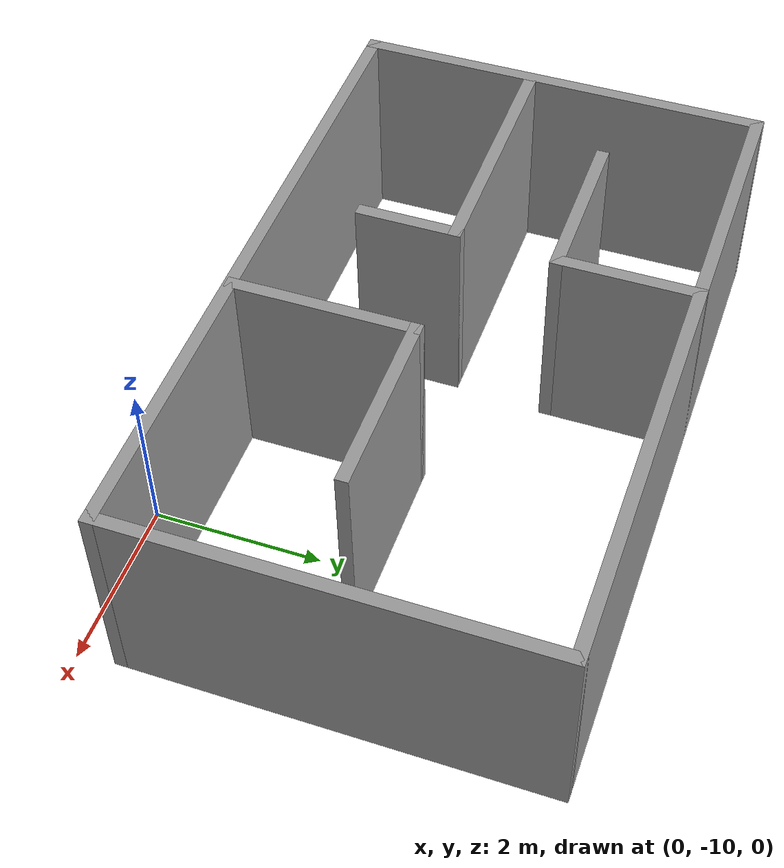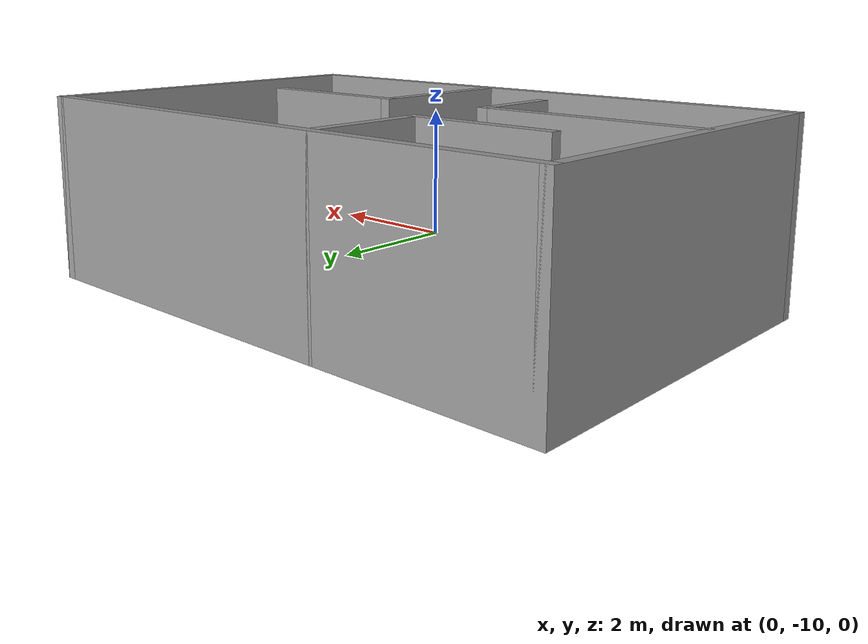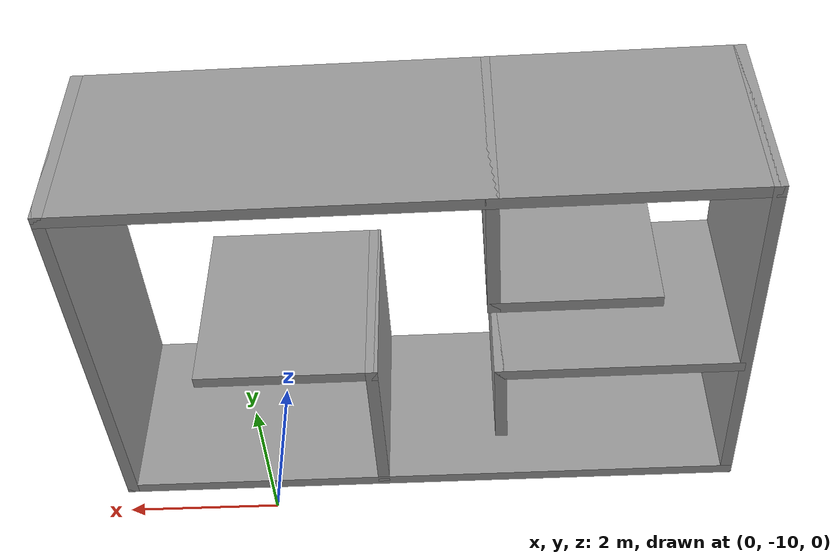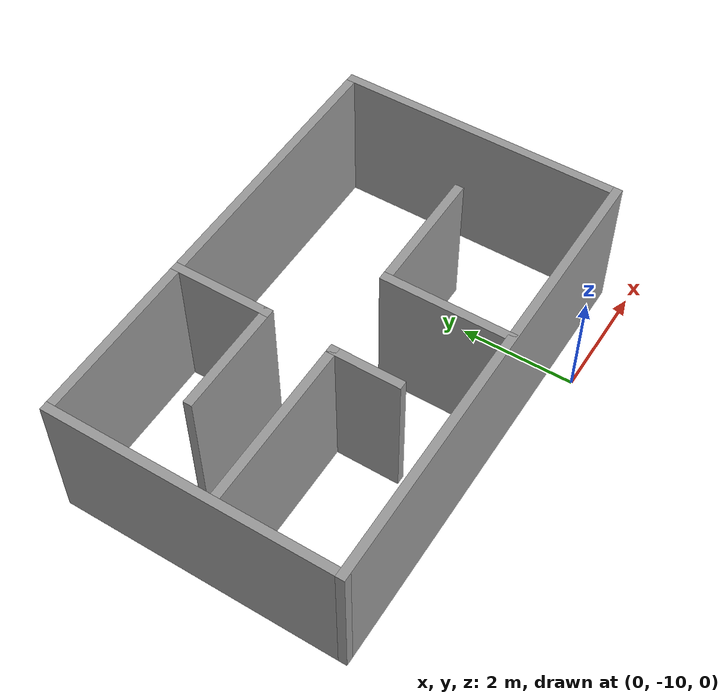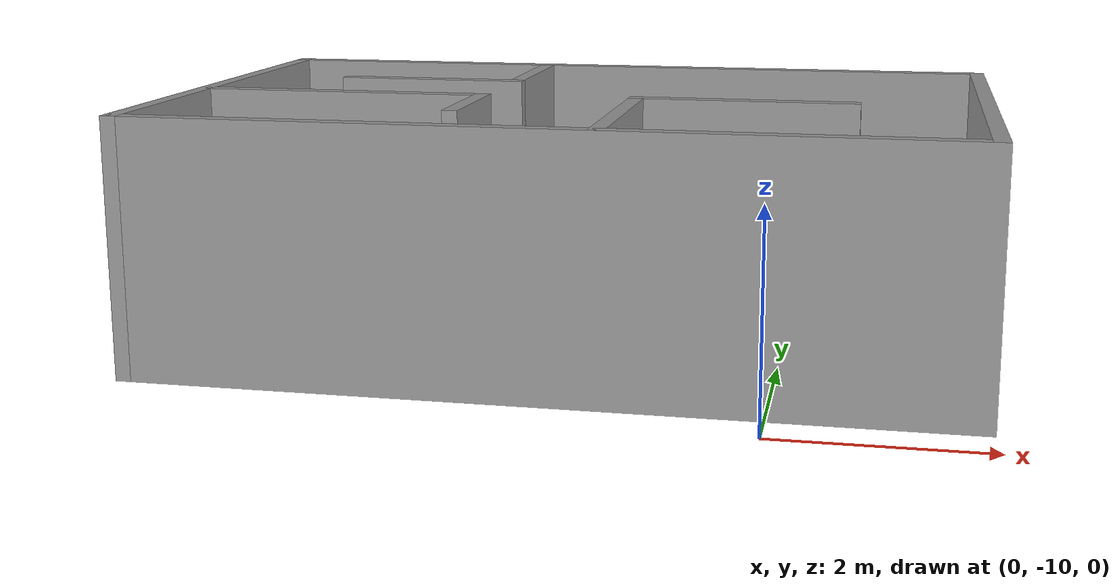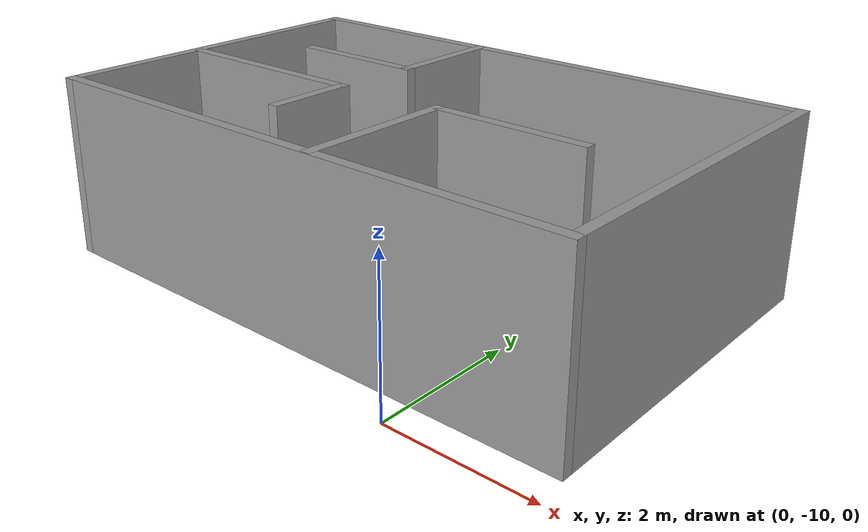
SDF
<?xml version='1.0'?>
<sdf version='1.7'>
  <model name='room1'>
    <pose>-2.04917 -4.78863 0 0 -0 0</pose>
    <link name='Wall_18'>
      <collision name='Wall_18_Collision'>
        <geometry>
          <box>
            <size>8 0.15 2.5</size>
          </box>
        </geometry>
        <pose>0 0 1.25 0 -0 0</pose>
      </collision>
      <visual name='Wall_18_Visual'>
        <pose>0 0 1.25 0 -0 0</pose>
        <geometry>
          <box>
            <size>8 0.15 2.5</size>
          </box>
        </geometry>
        <material>
          <script>
            <uri>file://media/materials/scripts/gazebo.material</uri>
            <name>Gazebo/Grey</name>
          </script>
          <ambient>1 1 1 1</ambient>
        </material>
        <meta>
          <layer>0</layer>
        </meta>
      </visual>
      <pose>0 0.13637 0 0 -0 0</pose>
    </link>
    <link name='Wall_19'>
      <collision name='Wall_19_Collision'>
        <geometry>
          <box>
            <size>5 0.15 2.5</size>
          </box>
        </geometry>
        <pose>0 0 1.25 0 -0 0</pose>
      </collision>
      <visual name='Wall_19_Visual'>
        <pose>0 0 1.25 0 -0 0</pose>
        <geometry>
          <box>
            <size>5 0.15 2.5</size>
          </box>
        </geometry>
        <material>
          <script>
            <uri>file://media/materials/scripts/gazebo.material</uri>
            <name>Gazebo/Grey</name>
          </script>
          <ambient>1 1 1 1</ambient>
        </material>
        <meta>
          <layer>0</layer>
        </meta>
      </visual>
      <pose>3.925 -2.28863 0 0 -0 -1.5708</pose>
    </link>
    <link name='Wall_20'>
      <collision name='Wall_20_Collision'>
        <geometry>
          <box>
            <size>8 0.15 2.5</size>
          </box>
        </geometry>
        <pose>0 0 1.25 0 -0 0</pose>
      </collision>
      <visual name='Wall_20_Visual'>
        <pose>0 0 1.25 0 -0 0</pose>
        <geometry>
          <box>
            <size>8 0.15 2.5</size>
          </box>
        </geometry>
        <material>
          <script>
            <uri>file://media/materials/scripts/gazebo.material</uri>
            <name>Gazebo/Grey</name>
          </script>
          <ambient>1 1 1 1</ambient>
        </material>
        <meta>
          <layer>0</layer>
        </meta>
      </visual>
      <pose>0 -4.71363 0 0 -0 3.14159</pose>
    </link>
    <link name='Wall_21'>
      <collision name='Wall_21_Collision'>
        <geometry>
          <box>
            <size>5 0.15 2.5</size>
          </box>
        </geometry>
        <pose>0 0 1.25 0 -0 0</pose>
      </collision>
      <visual name='Wall_21_Visual'>
        <pose>0 0 1.25 0 -0 0</pose>
        <geometry>
          <box>
            <size>5 0.15 2.5</size>
          </box>
        </geometry>
        <material>
          <script>
            <uri>file://media/materials/scripts/gazebo.material</uri>
            <name>Gazebo/Grey</name>
          </script>
          <ambient>1 1 1 1</ambient>
        </material>
        <meta>
          <layer>0</layer>
        </meta>
      </visual>
      <pose>-3.925 -2.28863 0 0 -0 1.5708</pose>
    </link>
    <link name='Wall_25'>
      <collision name='Wall_25_Collision'>
        <geometry>
          <box>
            <size>1.75 0.15 2.5</size>
          </box>
        </geometry>
        <pose>0 0 1.25 0 -0 0</pose>
      </collision>
      <visual name='Wall_25_Visual'>
        <pose>0 0 1.25 0 -0 0</pose>
        <geometry>
          <box>
            <size>1.75 0.15 2.5</size>
          </box>
        </geometry>
        <material>
          <script>
            <uri>file://media/materials/scripts/gazebo.material</uri>
            <name>Gazebo/Grey</name>
          </script>
          <ambient>1 1 1 1</ambient>
        </material>
        <meta>
          <layer>0</layer>
        </meta>
      </visual>
      <pose>-0.928078 -0.66363 0 0 -0 -1.5708</pose>
    </link>
    <link name='Wall_26'>
      <collision name='Wall_26_Collision'>
        <geometry>
          <box>
            <size>2 0.15 2.5</size>
          </box>
        </geometry>
        <pose>0 0 1.25 0 -0 0</pose>
      </collision>
      <visual name='Wall_26_Visual'>
        <pose>0 0 1.25 0 -0 0</pose>
        <geometry>
          <box>
            <size>2 0.15 2.5</size>
          </box>
        </geometry>
        <material>
          <script>
            <uri>file://media/materials/scripts/gazebo.material</uri>
            <name>Gazebo/Grey</name>
          </script>
          <ambient>1 1 1 1</ambient>
        </material>
        <meta>
          <layer>0</layer>
        </meta>
      </visual>
      <pose>-1.85308 -1.46363 0 0 -0 3.14159</pose>
    </link>
    <link name='Wall_28'>
      <collision name='Wall_28_Collision'>
        <geometry>
          <box>
            <size>3 0.15 2.5</size>
          </box>
        </geometry>
        <pose>0 0 1.25 0 -0 0</pose>
      </collision>
      <visual name='Wall_28_Visual'>
        <pose>0 0 1.25 0 -0 0</pose>
        <geometry>
          <box>
            <size>3 0.15 2.5</size>
          </box>
        </geometry>
        <material>
          <script>
            <uri>file://media/materials/scripts/gazebo.material</uri>
            <name>Gazebo/Grey</name>
          </script>
          <ambient>1 1 1 1</ambient>
        </material>
        <meta>
          <layer>0</layer>
        </meta>
      </visual>
      <pose>-2.41955 -2.65942 0 0 -0 0</pose>
    </link>
    <link name='Wall_29'>
      <collision name='Wall_29_Collision'>
        <geometry>
          <box>
            <size>1.25 0.15 2.5</size>
          </box>
        </geometry>
        <pose>0 0 1.25 0 -0 0</pose>
      </collision>
      <visual name='Wall_29_Visual'>
        <pose>0 0 1.25 0 -0 0</pose>
        <geometry>
          <box>
            <size>1.25 0.15 2.5</size>
          </box>
        </geometry>
        <material>
          <script>
            <uri>file://media/materials/scripts/gazebo.material</uri>
            <name>Gazebo/Grey</name>
          </script>
          <ambient>1 1 1 1</ambient>
        </material>
        <meta>
          <layer>0</layer>
        </meta>
      </visual>
      <pose>-0.994546 -3.20942 0 0 -0 -1.5708</pose>
    </link>
    <link name='Wall_31'>
      <collision name='Wall_31_Collision'>
        <geometry>
          <box>
            <size>2.25 0.15 2.5</size>
          </box>
        </geometry>
        <pose>0 0 1.25 0 -0 0</pose>
      </collision>
      <visual name='Wall_31_Visual'>
        <pose>0 0 1.25 0 -0 0</pose>
        <geometry>
          <box>
            <size>2.25 0.15 2.5</size>
          </box>
        </geometry>
        <material>
          <script>
            <uri>file://media/materials/scripts/gazebo.material</uri>
            <name>Gazebo/Grey</name>
          </script>
          <ambient>1 1 1 1</ambient>
        </material>
        <meta>
          <layer>0</layer>
        </meta>
      </visual>
      <pose>0.560327 -3.64089 0 0 -0 1.5708</pose>
    </link>
    <link name='Wall_32'>
      <collision name='Wall_32_Collision'>
        <geometry>
          <box>
            <size>2.25 0.15 2.5</size>
          </box>
        </geometry>
        <pose>0 0 1.25 0 -0 0</pose>
      </collision>
      <visual name='Wall_32_Visual'>
        <pose>0 0 1.25 0 -0 0</pose>
        <geometry>
          <box>
            <size>2.25 0.15 2.5</size>
          </box>
        </geometry>
        <material>
          <script>
            <uri>file://media/materials/scripts/gazebo.material</uri>
            <name>Gazebo/Grey</name>
          </script>
          <ambient>1 1 1 1</ambient>
        </material>
        <meta>
          <layer>0</layer>
        </meta>
      </visual>
      <pose>1.61033 -2.59089 0 0 -0 0</pose>
    </link>
    <static>1</static>
  </model>
</sdf>
